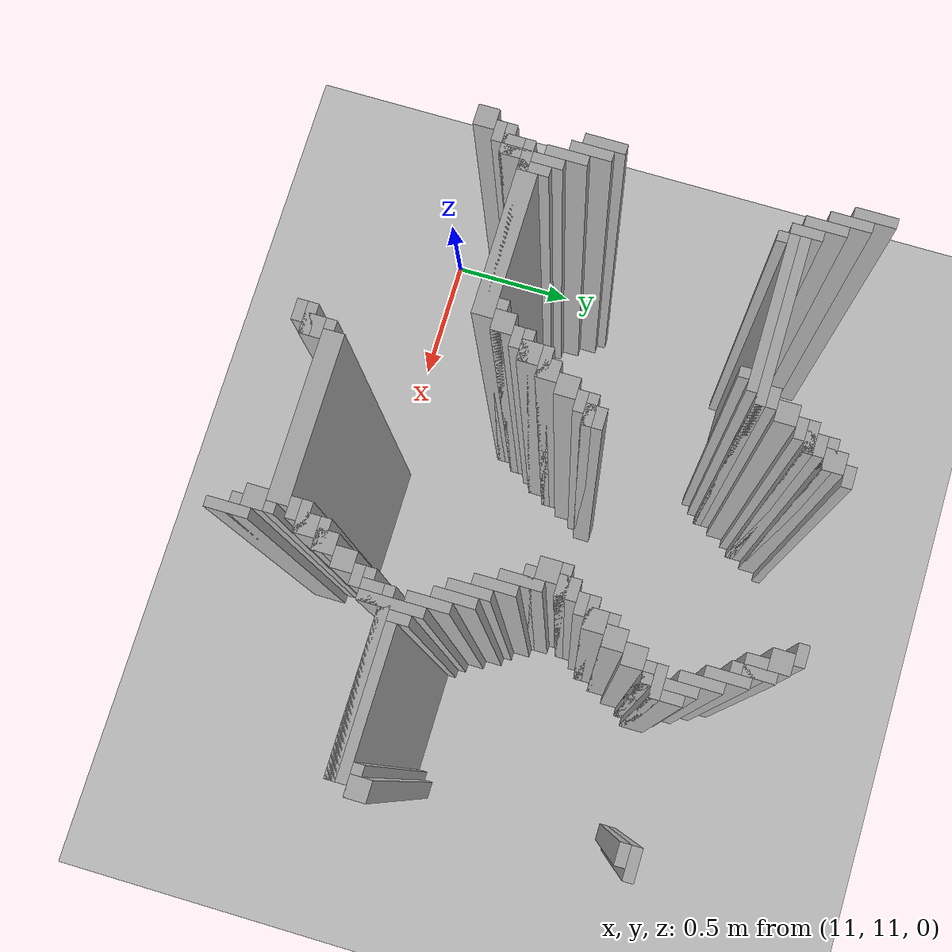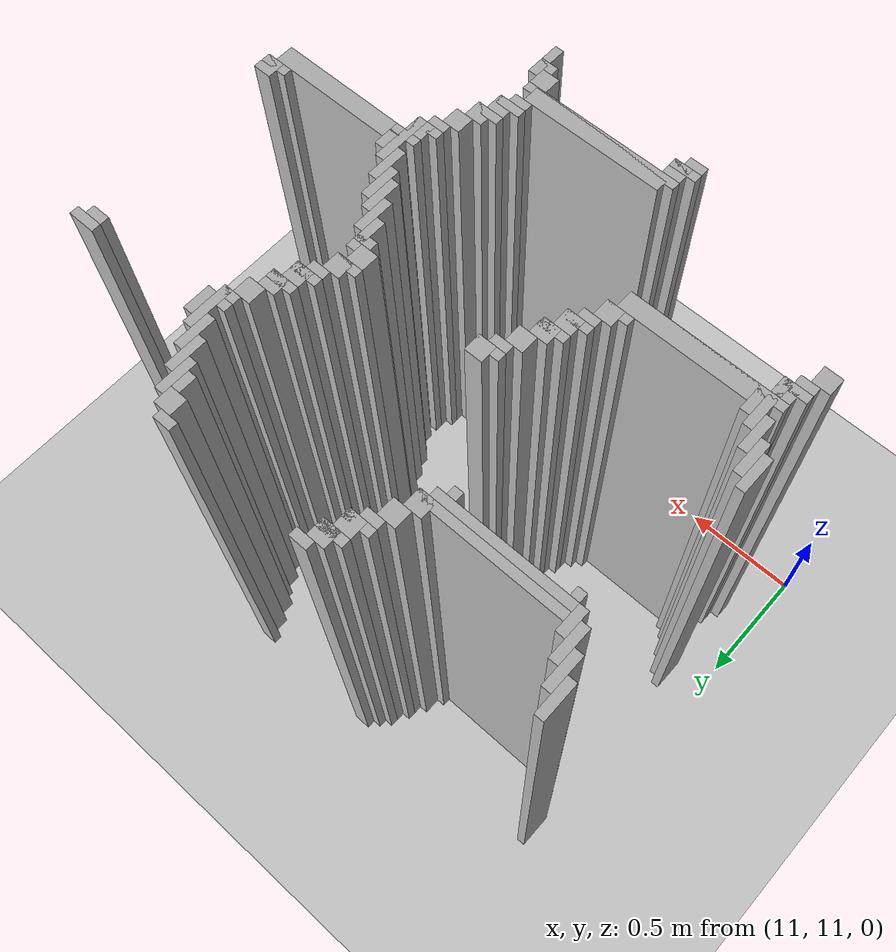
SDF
<sdf version="1.6">
 <world name="slam_world">
  <model name="ground_plane">
   <static>true</static>
   <link name="link">
    <collision name="collision">
     <geometry><plane><normal>0 0 1</normal><size>100 100</size></plane></geometry>
    </collision>
    <visual name="visual">
     <geometry><plane><normal>0 0 1</normal><size>100 100</size></plane></geometry>
     <material>
      <ambient>0.8 0.8 0.8 1</ambient>
      <diffuse>0.8 0.8 0.8 1</diffuse>
      <specular>0.8 0.8 0.8 1</specular>
     </material>
    </visual>
   </link>
  </model>
  <model name="wall_1596">
   <static>true</static>
   <pose>11.97215777262181 12.650812064965196 1.0 0 0 0</pose>
   <link name="link">
    <collision name="collision">
     <geometry><box><size>0.06960556844547564 0.03480278422273782 2.0</size></box></geometry>
    </collision>
    <visual name="visual">
     <geometry><box><size>0.06960556844547564 0.03480278422273782 2.0</size></box></geometry>
     <material><ambient>0.5 0.5 0.5 1</ambient><diffuse>0.7 0.7 0.7 1</diffuse></material>
    </visual>
   </link>
  </model>
  <model name="wall_1597">
   <static>true</static>
   <pose>12.529002320185615 12.650812064965196 1.0 0 0 0</pose>
   <link name="link">
    <collision name="collision">
     <geometry><box><size>0.06960556844547564 0.03480278422273782 2.0</size></box></geometry>
    </collision>
    <visual name="visual">
     <geometry><box><size>0.06960556844547564 0.03480278422273782 2.0</size></box></geometry>
     <material><ambient>0.5 0.5 0.5 1</ambient><diffuse>0.7 0.7 0.7 1</diffuse></material>
    </visual>
   </link>
  </model>
  <model name="wall_1611">
   <static>true</static>
   <pose>11.937354988399072 12.59860788863109 1.0 0 0 0</pose>
   <link name="link">
    <collision name="collision">
     <geometry><box><size>0.06960556844547564 0.06960556844547564 2.0</size></box></geometry>
    </collision>
    <visual name="visual">
     <geometry><box><size>0.06960556844547564 0.06960556844547564 2.0</size></box></geometry>
     <material><ambient>0.5 0.5 0.5 1</ambient><diffuse>0.7 0.7 0.7 1</diffuse></material>
    </visual>
   </link>
  </model>
  <model name="wall_1612">
   <static>true</static>
   <pose>12.563805104408353 12.59860788863109 1.0 0 0 0</pose>
   <link name="link">
    <collision name="collision">
     <geometry><box><size>0.06960556844547564 0.06960556844547564 2.0</size></box></geometry>
    </collision>
    <visual name="visual">
     <geometry><box><size>0.06960556844547564 0.06960556844547564 2.0</size></box></geometry>
     <material><ambient>0.5 0.5 0.5 1</ambient><diffuse>0.7 0.7 0.7 1</diffuse></material>
    </visual>
   </link>
  </model>
  <model name="wall_1627">
   <static>true</static>
   <pose>11.154292343387471 12.529002320185615 1.0 0 0 0</pose>
   <link name="link">
    <collision name="collision">
     <geometry><box><size>0.03480278422273782 0.13921113689095127 2.0</size></box></geometry>
    </collision>
    <visual name="visual">
     <geometry><box><size>0.03480278422273782 0.13921113689095127 2.0</size></box></geometry>
     <material><ambient>0.5 0.5 0.5 1</ambient><diffuse>0.7 0.7 0.7 1</diffuse></material>
    </visual>
   </link>
  </model>
  <model name="wall_1628">
   <static>true</static>
   <pose>11.919953596287703 12.581206496519721 1.0 0 0 0</pose>
   <link name="link">
    <collision name="collision">
     <geometry><box><size>0.10440835266821345 0.03480278422273782 2.0</size></box></geometry>
    </collision>
    <visual name="visual">
     <geometry><box><size>0.10440835266821345 0.03480278422273782 2.0</size></box></geometry>
     <material><ambient>0.5 0.5 0.5 1</ambient><diffuse>0.7 0.7 0.7 1</diffuse></material>
    </visual>
   </link>
  </model>
  <model name="wall_1629">
   <static>true</static>
   <pose>12.616009280742459 12.529002320185615 1.0 0 0 0</pose>
   <link name="link">
    <collision name="collision">
     <geometry><box><size>0.03480278422273782 0.13921113689095127 2.0</size></box></geometry>
    </collision>
    <visual name="visual">
     <geometry><box><size>0.03480278422273782 0.13921113689095127 2.0</size></box></geometry>
     <material><ambient>0.5 0.5 0.5 1</ambient><diffuse>0.7 0.7 0.7 1</diffuse></material>
    </visual>
   </link>
  </model>
  <model name="wall_1640">
   <static>true</static>
   <pose>11.902552204176333 12.529002320185615 1.0 0 0 0</pose>
   <link name="link">
    <collision name="collision">
     <geometry><box><size>0.06960556844547564 0.06960556844547564 2.0</size></box></geometry>
    </collision>
    <visual name="visual">
     <geometry><box><size>0.06960556844547564 0.06960556844547564 2.0</size></box></geometry>
     <material><ambient>0.5 0.5 0.5 1</ambient><diffuse>0.7 0.7 0.7 1</diffuse></material>
    </visual>
   </link>
  </model>
  <model name="wall_1641">
   <static>true</static>
   <pose>12.59860788863109 12.529002320185615 1.0 0 0 0</pose>
   <link name="link">
    <collision name="collision">
     <geometry><box><size>0.06960556844547564 0.06960556844547564 2.0</size></box></geometry>
    </collision>
    <visual name="visual">
     <geometry><box><size>0.06960556844547564 0.06960556844547564 2.0</size></box></geometry>
     <material><ambient>0.5 0.5 0.5 1</ambient><diffuse>0.7 0.7 0.7 1</diffuse></material>
    </visual>
   </link>
  </model>
  <model name="wall_1655">
   <static>true</static>
   <pose>11.189095127610209 12.459396751740138 1.0 0 0 0</pose>
   <link name="link">
    <collision name="collision">
     <geometry><box><size>0.03480278422273782 0.13921113689095127 2.0</size></box></geometry>
    </collision>
    <visual name="visual">
     <geometry><box><size>0.03480278422273782 0.13921113689095127 2.0</size></box></geometry>
     <material><ambient>0.5 0.5 0.5 1</ambient><diffuse>0.7 0.7 0.7 1</diffuse></material>
    </visual>
   </link>
  </model>
  <model name="wall_1656">
   <static>true</static>
   <pose>11.885150812064964 12.511600928074245 1.0 0 0 0</pose>
   <link name="link">
    <collision name="collision">
     <geometry><box><size>0.10440835266821345 0.03480278422273782 2.0</size></box></geometry>
    </collision>
    <visual name="visual">
     <geometry><box><size>0.10440835266821345 0.03480278422273782 2.0</size></box></geometry>
     <material><ambient>0.5 0.5 0.5 1</ambient><diffuse>0.7 0.7 0.7 1</diffuse></material>
    </visual>
   </link>
  </model>
  <model name="wall_1657">
   <static>true</static>
   <pose>12.650812064965196 12.459396751740138 1.0 0 0 0</pose>
   <link name="link">
    <collision name="collision">
     <geometry><box><size>0.03480278422273782 0.13921113689095127 2.0</size></box></geometry>
    </collision>
    <visual name="visual">
     <geometry><box><size>0.03480278422273782 0.13921113689095127 2.0</size></box></geometry>
     <material><ambient>0.5 0.5 0.5 1</ambient><diffuse>0.7 0.7 0.7 1</diffuse></material>
    </visual>
   </link>
  </model>
  <model name="wall_1667">
   <static>true</static>
   <pose>11.867749419953595 12.476798143851507 1.0 0 0 0</pose>
   <link name="link">
    <collision name="collision">
     <geometry><box><size>0.06960556844547564 0.03480278422273782 2.0</size></box></geometry>
    </collision>
    <visual name="visual">
     <geometry><box><size>0.06960556844547564 0.03480278422273782 2.0</size></box></geometry>
     <material><ambient>0.5 0.5 0.5 1</ambient><diffuse>0.7 0.7 0.7 1</diffuse></material>
    </visual>
   </link>
  </model>
  <model name="wall_1681">
   <static>true</static>
   <pose>11.223897911832946 12.389791183294664 1.0 0 0 0</pose>
   <link name="link">
    <collision name="collision">
     <geometry><box><size>0.03480278422273782 0.13921113689095127 2.0</size></box></geometry>
    </collision>
    <visual name="visual">
     <geometry><box><size>0.03480278422273782 0.13921113689095127 2.0</size></box></geometry>
     <material><ambient>0.5 0.5 0.5 1</ambient><diffuse>0.7 0.7 0.7 1</diffuse></material>
    </visual>
   </link>
  </model>
  <model name="wall_1682">
   <static>true</static>
   <pose>11.832946635730858 12.424593967517401 1.0 0 0 0</pose>
   <link name="link">
    <collision name="collision">
     <geometry><box><size>0.06960556844547564 0.06960556844547564 2.0</size></box></geometry>
    </collision>
    <visual name="visual">
     <geometry><box><size>0.06960556844547564 0.06960556844547564 2.0</size></box></geometry>
     <material><ambient>0.5 0.5 0.5 1</ambient><diffuse>0.7 0.7 0.7 1</diffuse></material>
    </visual>
   </link>
  </model>
  <model name="wall_1683">
   <static>true</static>
   <pose>12.685614849187935 12.389791183294664 1.0 0 0 0</pose>
   <link name="link">
    <collision name="collision">
     <geometry><box><size>0.03480278422273782 0.13921113689095127 2.0</size></box></geometry>
    </collision>
    <visual name="visual">
     <geometry><box><size>0.03480278422273782 0.13921113689095127 2.0</size></box></geometry>
     <material><ambient>0.5 0.5 0.5 1</ambient><diffuse>0.7 0.7 0.7 1</diffuse></material>
    </visual>
   </link>
  </model>
  <model name="wall_1698">
   <static>true</static>
   <pose>11.258700696055683 12.337587006960556 1.0 0 0 0</pose>
   <link name="link">
    <collision name="collision">
     <geometry><box><size>0.03480278422273782 0.10440835266821345 2.0</size></box></geometry>
    </collision>
    <visual name="visual">
     <geometry><box><size>0.03480278422273782 0.10440835266821345 2.0</size></box></geometry>
     <material><ambient>0.5 0.5 0.5 1</ambient><diffuse>0.7 0.7 0.7 1</diffuse></material>
    </visual>
   </link>
  </model>
  <model name="wall_1699">
   <static>true</static>
   <pose>11.79814385150812 12.354988399071924 1.0 0 0 0</pose>
   <link name="link">
    <collision name="collision">
     <geometry><box><size>0.06960556844547564 0.06960556844547564 2.0</size></box></geometry>
    </collision>
    <visual name="visual">
     <geometry><box><size>0.06960556844547564 0.06960556844547564 2.0</size></box></geometry>
     <material><ambient>0.5 0.5 0.5 1</ambient><diffuse>0.7 0.7 0.7 1</diffuse></material>
    </visual>
   </link>
  </model>
  <model name="wall_1700">
   <static>true</static>
   <pose>12.720417633410673 12.302784222737818 1.0 0 0 0</pose>
   <link name="link">
    <collision name="collision">
     <geometry><box><size>0.03480278422273782 0.17401392111368907 2.0</size></box></geometry>
    </collision>
    <visual name="visual">
     <geometry><box><size>0.03480278422273782 0.17401392111368907 2.0</size></box></geometry>
     <material><ambient>0.5 0.5 0.5 1</ambient><diffuse>0.7 0.7 0.7 1</diffuse></material>
    </visual>
   </link>
  </model>
  <model name="wall_1714">
   <static>true</static>
   <pose>11.554524361948955 12.337587006960556 1.0 0 0 0</pose>
   <link name="link">
    <collision name="collision">
     <geometry><box><size>0.5568445475638051 0.03480278422273782 2.0</size></box></geometry>
    </collision>
    <visual name="visual">
     <geometry><box><size>0.5568445475638051 0.03480278422273782 2.0</size></box></geometry>
     <material><ambient>0.5 0.5 0.5 1</ambient><diffuse>0.7 0.7 0.7 1</diffuse></material>
    </visual>
   </link>
  </model>
  <model name="wall_1715">
   <static>true</static>
   <pose>12.75522041763341 12.302784222737818 1.0 0 0 0</pose>
   <link name="link">
    <collision name="collision">
     <geometry><box><size>0.03480278422273782 0.10440835266821345 2.0</size></box></geometry>
    </collision>
    <visual name="visual">
     <geometry><box><size>0.03480278422273782 0.10440835266821345 2.0</size></box></geometry>
     <material><ambient>0.5 0.5 0.5 1</ambient><diffuse>0.7 0.7 0.7 1</diffuse></material>
    </visual>
   </link>
  </model>
  <model name="wall_1716">
   <static>true</static>
   <pose>13.24245939675174 12.337587006960556 1.0 0 0 0</pose>
   <link name="link">
    <collision name="collision">
     <geometry><box><size>0.10440835266821345 0.03480278422273782 2.0</size></box></geometry>
    </collision>
    <visual name="visual">
     <geometry><box><size>0.10440835266821345 0.03480278422273782 2.0</size></box></geometry>
     <material><ambient>0.5 0.5 0.5 1</ambient><diffuse>0.7 0.7 0.7 1</diffuse></material>
    </visual>
   </link>
  </model>
  <model name="wall_1728">
   <static>true</static>
   <pose>11.537122969837586 12.302784222737818 1.0 0 0 0</pose>
   <link name="link">
    <collision name="collision">
     <geometry><box><size>0.5220417633410672 0.03480278422273782 2.0</size></box></geometry>
    </collision>
    <visual name="visual">
     <geometry><box><size>0.5220417633410672 0.03480278422273782 2.0</size></box></geometry>
     <material><ambient>0.5 0.5 0.5 1</ambient><diffuse>0.7 0.7 0.7 1</diffuse></material>
    </visual>
   </link>
  </model>
  <model name="wall_1729">
   <static>true</static>
   <pose>13.22505800464037 12.302784222737818 1.0 0 0 0</pose>
   <link name="link">
    <collision name="collision">
     <geometry><box><size>0.06960556844547564 0.03480278422273782 2.0</size></box></geometry>
    </collision>
    <visual name="visual">
     <geometry><box><size>0.06960556844547564 0.03480278422273782 2.0</size></box></geometry>
     <material><ambient>0.5 0.5 0.5 1</ambient><diffuse>0.7 0.7 0.7 1</diffuse></material>
    </visual>
   </link>
  </model>
  <model name="wall_1744">
   <static>true</static>
   <pose>11.293503480278423 12.267981438515081 1.0 0 0 0</pose>
   <link name="link">
    <collision name="collision">
     <geometry><box><size>0.03480278422273782 0.03480278422273782 2.0</size></box></geometry>
    </collision>
    <visual name="visual">
     <geometry><box><size>0.03480278422273782 0.03480278422273782 2.0</size></box></geometry>
     <material><ambient>0.5 0.5 0.5 1</ambient><diffuse>0.7 0.7 0.7 1</diffuse></material>
    </visual>
   </link>
  </model>
  <model name="wall_1745">
   <static>true</static>
   <pose>11.745939675174013 12.267981438515081 1.0 0 0 0</pose>
   <link name="link">
    <collision name="collision">
     <geometry><box><size>0.03480278422273782 0.03480278422273782 2.0</size></box></geometry>
    </collision>
    <visual name="visual">
     <geometry><box><size>0.03480278422273782 0.03480278422273782 2.0</size></box></geometry>
     <material><ambient>0.5 0.5 0.5 1</ambient><diffuse>0.7 0.7 0.7 1</diffuse></material>
    </visual>
   </link>
  </model>
  <model name="wall_1746">
   <static>true</static>
   <pose>12.720417633410673 12.267981438515081 1.0 0 0 0</pose>
   <link name="link">
    <collision name="collision">
     <geometry><box><size>0.10440835266821345 0.03480278422273782 2.0</size></box></geometry>
    </collision>
    <visual name="visual">
     <geometry><box><size>0.10440835266821345 0.03480278422273782 2.0</size></box></geometry>
     <material><ambient>0.5 0.5 0.5 1</ambient><diffuse>0.7 0.7 0.7 1</diffuse></material>
    </visual>
   </link>
  </model>
  <model name="wall_1762">
   <static>true</static>
   <pose>12.703016241299304 12.233178654292344 1.0 0 0 0</pose>
   <link name="link">
    <collision name="collision">
     <geometry><box><size>0.06960556844547564 0.03480278422273782 2.0</size></box></geometry>
    </collision>
    <visual name="visual">
     <geometry><box><size>0.06960556844547564 0.03480278422273782 2.0</size></box></geometry>
     <material><ambient>0.5 0.5 0.5 1</ambient><diffuse>0.7 0.7 0.7 1</diffuse></material>
    </visual>
   </link>
  </model>
  <model name="wall_1778">
   <static>true</static>
   <pose>12.668213457076565 12.180974477958236 1.0 0 0 0</pose>
   <link name="link">
    <collision name="collision">
     <geometry><box><size>0.06960556844547564 0.06960556844547564 2.0</size></box></geometry>
    </collision>
    <visual name="visual">
     <geometry><box><size>0.06960556844547564 0.06960556844547564 2.0</size></box></geometry>
     <material><ambient>0.5 0.5 0.5 1</ambient><diffuse>0.7 0.7 0.7 1</diffuse></material>
    </visual>
   </link>
  </model>
  <model name="wall_1794">
   <static>true</static>
   <pose>12.633410672853827 12.11136890951276 1.0 0 0 0</pose>
   <link name="link">
    <collision name="collision">
     <geometry><box><size>0.06960556844547564 0.06960556844547564 2.0</size></box></geometry>
    </collision>
    <visual name="visual">
     <geometry><box><size>0.06960556844547564 0.06960556844547564 2.0</size></box></geometry>
     <material><ambient>0.5 0.5 0.5 1</ambient><diffuse>0.7 0.7 0.7 1</diffuse></material>
    </visual>
   </link>
  </model>
  <model name="wall_1810">
   <static>true</static>
   <pose>12.616009280742459 12.093967517401392 1.0 0 0 0</pose>
   <link name="link">
    <collision name="collision">
     <geometry><box><size>0.10440835266821345 0.03480278422273782 2.0</size></box></geometry>
    </collision>
    <visual name="visual">
     <geometry><box><size>0.10440835266821345 0.03480278422273782 2.0</size></box></geometry>
     <material><ambient>0.5 0.5 0.5 1</ambient><diffuse>0.7 0.7 0.7 1</diffuse></material>
    </visual>
   </link>
  </model>
  <model name="wall_1821">
   <static>true</static>
   <pose>12.59860788863109 12.041763341067284 1.0 0 0 0</pose>
   <link name="link">
    <collision name="collision">
     <geometry><box><size>0.06960556844547564 0.06960556844547564 2.0</size></box></geometry>
    </collision>
    <visual name="visual">
     <geometry><box><size>0.06960556844547564 0.06960556844547564 2.0</size></box></geometry>
     <material><ambient>0.5 0.5 0.5 1</ambient><diffuse>0.7 0.7 0.7 1</diffuse></material>
    </visual>
   </link>
  </model>
  <model name="wall_1836">
   <static>true</static>
   <pose>12.581206496519721 12.024361948955915 1.0 0 0 0</pose>
   <link name="link">
    <collision name="collision">
     <geometry><box><size>0.10440835266821345 0.03480278422273782 2.0</size></box></geometry>
    </collision>
    <visual name="visual">
     <geometry><box><size>0.10440835266821345 0.03480278422273782 2.0</size></box></geometry>
     <material><ambient>0.5 0.5 0.5 1</ambient><diffuse>0.7 0.7 0.7 1</diffuse></material>
    </visual>
   </link>
  </model>
  <model name="wall_1845">
   <static>true</static>
   <pose>12.563805104408353 11.989559164733178 1.0 0 0 0</pose>
   <link name="link">
    <collision name="collision">
     <geometry><box><size>0.06960556844547564 0.03480278422273782 2.0</size></box></geometry>
    </collision>
    <visual name="visual">
     <geometry><box><size>0.06960556844547564 0.03480278422273782 2.0</size></box></geometry>
     <material><ambient>0.5 0.5 0.5 1</ambient><diffuse>0.7 0.7 0.7 1</diffuse></material>
    </visual>
   </link>
  </model>
  <model name="wall_1860">
   <static>true</static>
   <pose>12.529002320185615 11.937354988399072 1.0 0 0 0</pose>
   <link name="link">
    <collision name="collision">
     <geometry><box><size>0.06960556844547564 0.06960556844547564 2.0</size></box></geometry>
    </collision>
    <visual name="visual">
     <geometry><box><size>0.06960556844547564 0.06960556844547564 2.0</size></box></geometry>
     <material><ambient>0.5 0.5 0.5 1</ambient><diffuse>0.7 0.7 0.7 1</diffuse></material>
    </visual>
   </link>
  </model>
  <model name="wall_1876">
   <static>true</static>
   <pose>12.511600928074245 11.919953596287703 1.0 0 0 0</pose>
   <link name="link">
    <collision name="collision">
     <geometry><box><size>0.10440835266821345 0.03480278422273782 2.0</size></box></geometry>
    </collision>
    <visual name="visual">
     <geometry><box><size>0.10440835266821345 0.03480278422273782 2.0</size></box></geometry>
     <material><ambient>0.5 0.5 0.5 1</ambient><diffuse>0.7 0.7 0.7 1</diffuse></material>
    </visual>
   </link>
  </model>
  <model name="wall_1887">
   <static>true</static>
   <pose>12.006960556844547 11.867749419953595 1.0 0 0 0</pose>
   <link name="link">
    <collision name="collision">
     <geometry><box><size>0.06960556844547564 0.06960556844547564 2.0</size></box></geometry>
    </collision>
    <visual name="visual">
     <geometry><box><size>0.06960556844547564 0.06960556844547564 2.0</size></box></geometry>
     <material><ambient>0.5 0.5 0.5 1</ambient><diffuse>0.7 0.7 0.7 1</diffuse></material>
    </visual>
   </link>
  </model>
  <model name="wall_1888">
   <static>true</static>
   <pose>12.494199535962876 11.867749419953595 1.0 0 0 0</pose>
   <link name="link">
    <collision name="collision">
     <geometry><box><size>0.06960556844547564 0.06960556844547564 2.0</size></box></geometry>
    </collision>
    <visual name="visual">
     <geometry><box><size>0.06960556844547564 0.06960556844547564 2.0</size></box></geometry>
     <material><ambient>0.5 0.5 0.5 1</ambient><diffuse>0.7 0.7 0.7 1</diffuse></material>
    </visual>
   </link>
  </model>
  <model name="wall_1900">
   <static>true</static>
   <pose>11.989559164733178 11.850348027842227 1.0 0 0 0</pose>
   <link name="link">
    <collision name="collision">
     <geometry><box><size>0.10440835266821345 0.03480278422273782 2.0</size></box></geometry>
    </collision>
    <visual name="visual">
     <geometry><box><size>0.10440835266821345 0.03480278422273782 2.0</size></box></geometry>
     <material><ambient>0.5 0.5 0.5 1</ambient><diffuse>0.7 0.7 0.7 1</diffuse></material>
    </visual>
   </link>
  </model>
  <model name="wall_1901">
   <static>true</static>
   <pose>12.546403712296984 11.79814385150812 1.0 0 0 0</pose>
   <link name="link">
    <collision name="collision">
     <geometry><box><size>0.03480278422273782 0.13921113689095127 2.0</size></box></geometry>
    </collision>
    <visual name="visual">
     <geometry><box><size>0.03480278422273782 0.13921113689095127 2.0</size></box></geometry>
     <material><ambient>0.5 0.5 0.5 1</ambient><diffuse>0.7 0.7 0.7 1</diffuse></material>
    </visual>
   </link>
  </model>
  <model name="wall_1915">
   <static>true</static>
   <pose>11.97215777262181 11.81554524361949 1.0 0 0 0</pose>
   <link name="link">
    <collision name="collision">
     <geometry><box><size>0.06960556844547564 0.03480278422273782 2.0</size></box></geometry>
    </collision>
    <visual name="visual">
     <geometry><box><size>0.06960556844547564 0.03480278422273782 2.0</size></box></geometry>
     <material><ambient>0.5 0.5 0.5 1</ambient><diffuse>0.7 0.7 0.7 1</diffuse></material>
    </visual>
   </link>
  </model>
  <model name="wall_1916">
   <static>true</static>
   <pose>12.529002320185615 11.81554524361949 1.0 0 0 0</pose>
   <link name="link">
    <collision name="collision">
     <geometry><box><size>0.06960556844547564 0.03480278422273782 2.0</size></box></geometry>
    </collision>
    <visual name="visual">
     <geometry><box><size>0.06960556844547564 0.03480278422273782 2.0</size></box></geometry>
     <material><ambient>0.5 0.5 0.5 1</ambient><diffuse>0.7 0.7 0.7 1</diffuse></material>
    </visual>
   </link>
  </model>
  <model name="wall_1931">
   <static>true</static>
   <pose>11.937354988399072 11.763341067285383 1.0 0 0 0</pose>
   <link name="link">
    <collision name="collision">
     <geometry><box><size>0.06960556844547564 0.06960556844547564 2.0</size></box></geometry>
    </collision>
    <visual name="visual">
     <geometry><box><size>0.06960556844547564 0.06960556844547564 2.0</size></box></geometry>
     <material><ambient>0.5 0.5 0.5 1</ambient><diffuse>0.7 0.7 0.7 1</diffuse></material>
    </visual>
   </link>
  </model>
  <model name="wall_1932">
   <static>true</static>
   <pose>12.581206496519721 11.728538283062644 1.0 0 0 0</pose>
   <link name="link">
    <collision name="collision">
     <geometry><box><size>0.03480278422273782 0.13921113689095127 2.0</size></box></geometry>
    </collision>
    <visual name="visual">
     <geometry><box><size>0.03480278422273782 0.13921113689095127 2.0</size></box></geometry>
     <material><ambient>0.5 0.5 0.5 1</ambient><diffuse>0.7 0.7 0.7 1</diffuse></material>
    </visual>
   </link>
  </model>
  <model name="wall_1946">
   <static>true</static>
   <pose>11.154292343387471 11.658932714617169 1.0 0 0 0</pose>
   <link name="link">
    <collision name="collision">
     <geometry><box><size>0.03480278422273782 0.13921113689095127 2.0</size></box></geometry>
    </collision>
    <visual name="visual">
     <geometry><box><size>0.03480278422273782 0.13921113689095127 2.0</size></box></geometry>
     <material><ambient>0.5 0.5 0.5 1</ambient><diffuse>0.7 0.7 0.7 1</diffuse></material>
    </visual>
   </link>
  </model>
  <model name="wall_1947">
   <static>true</static>
   <pose>11.902552204176333 11.693735498839906 1.0 0 0 0</pose>
   <link name="link">
    <collision name="collision">
     <geometry><box><size>0.06960556844547564 0.06960556844547564 2.0</size></box></geometry>
    </collision>
    <visual name="visual">
     <geometry><box><size>0.06960556844547564 0.06960556844547564 2.0</size></box></geometry>
     <material><ambient>0.5 0.5 0.5 1</ambient><diffuse>0.7 0.7 0.7 1</diffuse></material>
    </visual>
   </link>
  </model>
  <model name="wall_1948">
   <static>true</static>
   <pose>12.616009280742459 11.658932714617169 1.0 0 0 0</pose>
   <link name="link">
    <collision name="collision">
     <geometry><box><size>0.03480278422273782 0.13921113689095127 2.0</size></box></geometry>
    </collision>
    <visual name="visual">
     <geometry><box><size>0.03480278422273782 0.13921113689095127 2.0</size></box></geometry>
     <material><ambient>0.5 0.5 0.5 1</ambient><diffuse>0.7 0.7 0.7 1</diffuse></material>
    </visual>
   </link>
  </model>
  <model name="wall_1962">
   <static>true</static>
   <pose>11.189095127610209 11.624129930394432 1.0 0 0 0</pose>
   <link name="link">
    <collision name="collision">
     <geometry><box><size>0.03480278422273782 0.13921113689095127 2.0</size></box></geometry>
    </collision>
    <visual name="visual">
     <geometry><box><size>0.03480278422273782 0.13921113689095127 2.0</size></box></geometry>
     <material><ambient>0.5 0.5 0.5 1</ambient><diffuse>0.7 0.7 0.7 1</diffuse></material>
    </visual>
   </link>
  </model>
  <model name="wall_1963">
   <static>true</static>
   <pose>11.885150812064964 11.676334106728538 1.0 0 0 0</pose>
   <link name="link">
    <collision name="collision">
     <geometry><box><size>0.10440835266821345 0.03480278422273782 2.0</size></box></geometry>
    </collision>
    <visual name="visual">
     <geometry><box><size>0.10440835266821345 0.03480278422273782 2.0</size></box></geometry>
     <material><ambient>0.5 0.5 0.5 1</ambient><diffuse>0.7 0.7 0.7 1</diffuse></material>
    </visual>
   </link>
  </model>
  <model name="wall_1964">
   <static>true</static>
   <pose>12.650812064965196 11.624129930394432 1.0 0 0 0</pose>
   <link name="link">
    <collision name="collision">
     <geometry><box><size>0.03480278422273782 0.13921113689095127 2.0</size></box></geometry>
    </collision>
    <visual name="visual">
     <geometry><box><size>0.03480278422273782 0.13921113689095127 2.0</size></box></geometry>
     <material><ambient>0.5 0.5 0.5 1</ambient><diffuse>0.7 0.7 0.7 1</diffuse></material>
    </visual>
   </link>
  </model>
  <model name="wall_1974">
   <static>true</static>
   <pose>11.867749419953595 11.624129930394432 1.0 0 0 0</pose>
   <link name="link">
    <collision name="collision">
     <geometry><box><size>0.06960556844547564 0.06960556844547564 2.0</size></box></geometry>
    </collision>
    <visual name="visual">
     <geometry><box><size>0.06960556844547564 0.06960556844547564 2.0</size></box></geometry>
     <material><ambient>0.5 0.5 0.5 1</ambient><diffuse>0.7 0.7 0.7 1</diffuse></material>
    </visual>
   </link>
  </model>
  <model name="wall_1988">
   <static>true</static>
   <pose>11.223897911832946 11.554524361948955 1.0 0 0 0</pose>
   <link name="link">
    <collision name="collision">
     <geometry><box><size>0.03480278422273782 0.13921113689095127 2.0</size></box></geometry>
    </collision>
    <visual name="visual">
     <geometry><box><size>0.03480278422273782 0.13921113689095127 2.0</size></box></geometry>
     <material><ambient>0.5 0.5 0.5 1</ambient><diffuse>0.7 0.7 0.7 1</diffuse></material>
    </visual>
   </link>
  </model>
  <model name="wall_1989">
   <static>true</static>
   <pose>11.850348027842227 11.606728538283063 1.0 0 0 0</pose>
   <link name="link">
    <collision name="collision">
     <geometry><box><size>0.10440835266821345 0.03480278422273782 2.0</size></box></geometry>
    </collision>
    <visual name="visual">
     <geometry><box><size>0.10440835266821345 0.03480278422273782 2.0</size></box></geometry>
     <material><ambient>0.5 0.5 0.5 1</ambient><diffuse>0.7 0.7 0.7 1</diffuse></material>
    </visual>
   </link>
  </model>
  <model name="wall_1990">
   <static>true</static>
   <pose>12.685614849187935 11.554524361948955 1.0 0 0 0</pose>
   <link name="link">
    <collision name="collision">
     <geometry><box><size>0.03480278422273782 0.13921113689095127 2.0</size></box></geometry>
    </collision>
    <visual name="visual">
     <geometry><box><size>0.03480278422273782 0.13921113689095127 2.0</size></box></geometry>
     <material><ambient>0.5 0.5 0.5 1</ambient><diffuse>0.7 0.7 0.7 1</diffuse></material>
    </visual>
   </link>
  </model>
  <model name="wall_1998">
   <static>true</static>
   <pose>11.832946635730858 11.571925754060324 1.0 0 0 0</pose>
   <link name="link">
    <collision name="collision">
     <geometry><box><size>0.06960556844547564 0.03480278422273782 2.0</size></box></geometry>
    </collision>
    <visual name="visual">
     <geometry><box><size>0.06960556844547564 0.03480278422273782 2.0</size></box></geometry>
     <material><ambient>0.5 0.5 0.5 1</ambient><diffuse>0.7 0.7 0.7 1</diffuse></material>
    </visual>
   </link>
  </model>
  <model name="wall_2011">
   <static>true</static>
   <pose>11.258700696055683 11.450116009280743 1.0 0 0 0</pose>
   <link name="link">
    <collision name="collision">
     <geometry><box><size>0.03480278422273782 0.2088167053364269 2.0</size></box></geometry>
    </collision>
    <visual name="visual">
     <geometry><box><size>0.03480278422273782 0.2088167053364269 2.0</size></box></geometry>
     <material><ambient>0.5 0.5 0.5 1</ambient><diffuse>0.7 0.7 0.7 1</diffuse></material>
    </visual>
   </link>
  </model>
  <model name="wall_2012">
   <static>true</static>
   <pose>11.79814385150812 11.519721577726218 1.0 0 0 0</pose>
   <link name="link">
    <collision name="collision">
     <geometry><box><size>0.06960556844547564 0.06960556844547564 2.0</size></box></geometry>
    </collision>
    <visual name="visual">
     <geometry><box><size>0.06960556844547564 0.06960556844547564 2.0</size></box></geometry>
     <material><ambient>0.5 0.5 0.5 1</ambient><diffuse>0.7 0.7 0.7 1</diffuse></material>
    </visual>
   </link>
  </model>
  <model name="wall_2013">
   <static>true</static>
   <pose>12.720417633410673 11.450116009280743 1.0 0 0 0</pose>
   <link name="link">
    <collision name="collision">
     <geometry><box><size>0.03480278422273782 0.2088167053364269 2.0</size></box></geometry>
    </collision>
    <visual name="visual">
     <geometry><box><size>0.03480278422273782 0.2088167053364269 2.0</size></box></geometry>
     <material><ambient>0.5 0.5 0.5 1</ambient><diffuse>0.7 0.7 0.7 1</diffuse></material>
    </visual>
   </link>
  </model>
  <model name="wall_2014">
   <static>true</static>
   <pose>13.259860788863108 11.519721577726218 1.0 0 0 0</pose>
   <link name="link">
    <collision name="collision">
     <geometry><box><size>0.06960556844547564 0.06960556844547564 2.0</size></box></geometry>
    </collision>
    <visual name="visual">
     <geometry><box><size>0.06960556844547564 0.06960556844547564 2.0</size></box></geometry>
     <material><ambient>0.5 0.5 0.5 1</ambient><diffuse>0.7 0.7 0.7 1</diffuse></material>
    </visual>
   </link>
  </model>
  <model name="wall_2026">
   <static>true</static>
   <pose>11.293503480278423 11.467517401392112 1.0 0 0 0</pose>
   <link name="link">
    <collision name="collision">
     <geometry><box><size>0.03480278422273782 0.10440835266821345 2.0</size></box></geometry>
    </collision>
    <visual name="visual">
     <geometry><box><size>0.03480278422273782 0.10440835266821345 2.0</size></box></geometry>
     <material><ambient>0.5 0.5 0.5 1</ambient><diffuse>0.7 0.7 0.7 1</diffuse></material>
    </visual>
   </link>
  </model>
  <model name="wall_2027">
   <static>true</static>
   <pose>11.780742459396752 11.502320185614849 1.0 0 0 0</pose>
   <link name="link">
    <collision name="collision">
     <geometry><box><size>0.10440835266821345 0.03480278422273782 2.0</size></box></geometry>
    </collision>
    <visual name="visual">
     <geometry><box><size>0.10440835266821345 0.03480278422273782 2.0</size></box></geometry>
     <material><ambient>0.5 0.5 0.5 1</ambient><diffuse>0.7 0.7 0.7 1</diffuse></material>
    </visual>
   </link>
  </model>
  <model name="wall_2028">
   <static>true</static>
   <pose>12.75522041763341 11.467517401392112 1.0 0 0 0</pose>
   <link name="link">
    <collision name="collision">
     <geometry><box><size>0.03480278422273782 0.10440835266821345 2.0</size></box></geometry>
    </collision>
    <visual name="visual">
     <geometry><box><size>0.03480278422273782 0.10440835266821345 2.0</size></box></geometry>
     <material><ambient>0.5 0.5 0.5 1</ambient><diffuse>0.7 0.7 0.7 1</diffuse></material>
    </visual>
   </link>
  </model>
  <model name="wall_2029">
   <static>true</static>
   <pose>13.24245939675174 11.502320185614849 1.0 0 0 0</pose>
   <link name="link">
    <collision name="collision">
     <geometry><box><size>0.10440835266821345 0.03480278422273782 2.0</size></box></geometry>
    </collision>
    <visual name="visual">
     <geometry><box><size>0.10440835266821345 0.03480278422273782 2.0</size></box></geometry>
     <material><ambient>0.5 0.5 0.5 1</ambient><diffuse>0.7 0.7 0.7 1</diffuse></material>
    </visual>
   </link>
  </model>
  <model name="wall_2040">
   <static>true</static>
   <pose>11.554524361948955 11.450116009280743 1.0 0 0 0</pose>
   <link name="link">
    <collision name="collision">
     <geometry><box><size>0.4872389791183295 0.06960556844547564 2.0</size></box></geometry>
    </collision>
    <visual name="visual">
     <geometry><box><size>0.4872389791183295 0.06960556844547564 2.0</size></box></geometry>
     <material><ambient>0.5 0.5 0.5 1</ambient><diffuse>0.7 0.7 0.7 1</diffuse></material>
    </visual>
   </link>
  </model>
  <model name="wall_2041">
   <static>true</static>
   <pose>13.016241299303944 11.450116009280743 1.0 0 0 0</pose>
   <link name="link">
    <collision name="collision">
     <geometry><box><size>0.4872389791183295 0.06960556844547564 2.0</size></box></geometry>
    </collision>
    <visual name="visual">
     <geometry><box><size>0.4872389791183295 0.06960556844547564 2.0</size></box></geometry>
     <material><ambient>0.5 0.5 0.5 1</ambient><diffuse>0.7 0.7 0.7 1</diffuse></material>
    </visual>
   </link>
  </model>
  <model name="wall_2051">
   <static>true</static>
   <pose>11.502320185614849 11.432714617169372 1.0 0 0 0</pose>
   <link name="link">
    <collision name="collision">
     <geometry><box><size>0.5916473317865429 0.03480278422273782 2.0</size></box></geometry>
    </collision>
    <visual name="visual">
     <geometry><box><size>0.5916473317865429 0.03480278422273782 2.0</size></box></geometry>
     <material><ambient>0.5 0.5 0.5 1</ambient><diffuse>0.7 0.7 0.7 1</diffuse></material>
    </visual>
   </link>
  </model>
  <model name="wall_2052">
   <static>true</static>
   <pose>12.964037122969836 11.432714617169372 1.0 0 0 0</pose>
   <link name="link">
    <collision name="collision">
     <geometry><box><size>0.5916473317865429 0.03480278422273782 2.0</size></box></geometry>
    </collision>
    <visual name="visual">
     <geometry><box><size>0.5916473317865429 0.03480278422273782 2.0</size></box></geometry>
     <material><ambient>0.5 0.5 0.5 1</ambient><diffuse>0.7 0.7 0.7 1</diffuse></material>
    </visual>
   </link>
  </model>
  <model name="wall_2063">
   <static>true</static>
   <pose>11.241299303944315 11.380510440835266 1.0 0 0 0</pose>
   <link name="link">
    <collision name="collision">
     <geometry><box><size>0.06960556844547564 0.06960556844547564 2.0</size></box></geometry>
    </collision>
    <visual name="visual">
     <geometry><box><size>0.06960556844547564 0.06960556844547564 2.0</size></box></geometry>
     <material><ambient>0.5 0.5 0.5 1</ambient><diffuse>0.7 0.7 0.7 1</diffuse></material>
    </visual>
   </link>
  </model>
  <model name="wall_2064">
   <static>true</static>
   <pose>12.703016241299304 11.380510440835266 1.0 0 0 0</pose>
   <link name="link">
    <collision name="collision">
     <geometry><box><size>0.06960556844547564 0.06960556844547564 2.0</size></box></geometry>
    </collision>
    <visual name="visual">
     <geometry><box><size>0.06960556844547564 0.06960556844547564 2.0</size></box></geometry>
     <material><ambient>0.5 0.5 0.5 1</ambient><diffuse>0.7 0.7 0.7 1</diffuse></material>
    </visual>
   </link>
  </model>
  <model name="wall_2075">
   <static>true</static>
   <pose>11.223897911832946 11.363109048723897 1.0 0 0 0</pose>
   <link name="link">
    <collision name="collision">
     <geometry><box><size>0.10440835266821345 0.03480278422273782 2.0</size></box></geometry>
    </collision>
    <visual name="visual">
     <geometry><box><size>0.10440835266821345 0.03480278422273782 2.0</size></box></geometry>
     <material><ambient>0.5 0.5 0.5 1</ambient><diffuse>0.7 0.7 0.7 1</diffuse></material>
    </visual>
   </link>
  </model>
  <model name="wall_2076">
   <static>true</static>
   <pose>12.685614849187935 11.363109048723897 1.0 0 0 0</pose>
   <link name="link">
    <collision name="collision">
     <geometry><box><size>0.10440835266821345 0.03480278422273782 2.0</size></box></geometry>
    </collision>
    <visual name="visual">
     <geometry><box><size>0.10440835266821345 0.03480278422273782 2.0</size></box></geometry>
     <material><ambient>0.5 0.5 0.5 1</ambient><diffuse>0.7 0.7 0.7 1</diffuse></material>
    </visual>
   </link>
  </model>
  <model name="wall_2084">
   <static>true</static>
   <pose>11.206496519721577 11.32830626450116 1.0 0 0 0</pose>
   <link name="link">
    <collision name="collision">
     <geometry><box><size>0.06960556844547564 0.03480278422273782 2.0</size></box></geometry>
    </collision>
    <visual name="visual">
     <geometry><box><size>0.06960556844547564 0.03480278422273782 2.0</size></box></geometry>
     <material><ambient>0.5 0.5 0.5 1</ambient><diffuse>0.7 0.7 0.7 1</diffuse></material>
    </visual>
   </link>
  </model>
  <model name="wall_2085">
   <static>true</static>
   <pose>12.668213457076565 11.32830626450116 1.0 0 0 0</pose>
   <link name="link">
    <collision name="collision">
     <geometry><box><size>0.06960556844547564 0.03480278422273782 2.0</size></box></geometry>
    </collision>
    <visual name="visual">
     <geometry><box><size>0.06960556844547564 0.03480278422273782 2.0</size></box></geometry>
     <material><ambient>0.5 0.5 0.5 1</ambient><diffuse>0.7 0.7 0.7 1</diffuse></material>
    </visual>
   </link>
  </model>
  <model name="wall_2095">
   <static>true</static>
   <pose>11.17169373549884 11.276102088167052 1.0 0 0 0</pose>
   <link name="link">
    <collision name="collision">
     <geometry><box><size>0.06960556844547564 0.06960556844547564 2.0</size></box></geometry>
    </collision>
    <visual name="visual">
     <geometry><box><size>0.06960556844547564 0.06960556844547564 2.0</size></box></geometry>
     <material><ambient>0.5 0.5 0.5 1</ambient><diffuse>0.7 0.7 0.7 1</diffuse></material>
    </visual>
   </link>
  </model>
  <model name="wall_2096">
   <static>true</static>
   <pose>12.633410672853827 11.276102088167052 1.0 0 0 0</pose>
   <link name="link">
    <collision name="collision">
     <geometry><box><size>0.06960556844547564 0.06960556844547564 2.0</size></box></geometry>
    </collision>
    <visual name="visual">
     <geometry><box><size>0.06960556844547564 0.06960556844547564 2.0</size></box></geometry>
     <material><ambient>0.5 0.5 0.5 1</ambient><diffuse>0.7 0.7 0.7 1</diffuse></material>
    </visual>
   </link>
  </model>
  <model name="wall_2108">
   <static>true</static>
   <pose>12.59860788863109 11.206496519721577 1.0 0 0 0</pose>
   <link name="link">
    <collision name="collision">
     <geometry><box><size>0.06960556844547564 0.06960556844547564 2.0</size></box></geometry>
    </collision>
    <visual name="visual">
     <geometry><box><size>0.06960556844547564 0.06960556844547564 2.0</size></box></geometry>
     <material><ambient>0.5 0.5 0.5 1</ambient><diffuse>0.7 0.7 0.7 1</diffuse></material>
    </visual>
   </link>
  </model>
  <model name="wall_2120">
   <static>true</static>
   <pose>12.581206496519721 11.189095127610209 1.0 0 0 0</pose>
   <link name="link">
    <collision name="collision">
     <geometry><box><size>0.10440835266821345 0.03480278422273782 2.0</size></box></geometry>
    </collision>
    <visual name="visual">
     <geometry><box><size>0.10440835266821345 0.03480278422273782 2.0</size></box></geometry>
     <material><ambient>0.5 0.5 0.5 1</ambient><diffuse>0.7 0.7 0.7 1</diffuse></material>
    </visual>
   </link>
  </model>
  <model name="wall_2128">
   <static>true</static>
   <pose>12.563805104408353 11.1368909512761 1.0 0 0 0</pose>
   <link name="link">
    <collision name="collision">
     <geometry><box><size>0.06960556844547564 0.06960556844547564 2.0</size></box></geometry>
    </collision>
    <visual name="visual">
     <geometry><box><size>0.06960556844547564 0.06960556844547564 2.0</size></box></geometry>
     <material><ambient>0.5 0.5 0.5 1</ambient><diffuse>0.7 0.7 0.7 1</diffuse></material>
    </visual>
   </link>
  </model>
  <model name="wall_2139">
   <static>true</static>
   <pose>12.546403712296984 11.119489559164732 1.0 0 0 0</pose>
   <link name="link">
    <collision name="collision">
     <geometry><box><size>0.10440835266821345 0.03480278422273782 2.0</size></box></geometry>
    </collision>
    <visual name="visual">
     <geometry><box><size>0.10440835266821345 0.03480278422273782 2.0</size></box></geometry>
     <material><ambient>0.5 0.5 0.5 1</ambient><diffuse>0.7 0.7 0.7 1</diffuse></material>
    </visual>
   </link>
  </model>
  <model name="wall_2147">
   <static>true</static>
   <pose>12.529002320185615 11.084686774941995 1.0 0 0 0</pose>
   <link name="link">
    <collision name="collision">
     <geometry><box><size>0.06960556844547564 0.03480278422273782 2.0</size></box></geometry>
    </collision>
    <visual name="visual">
     <geometry><box><size>0.06960556844547564 0.03480278422273782 2.0</size></box></geometry>
     <material><ambient>0.5 0.5 0.5 1</ambient><diffuse>0.7 0.7 0.7 1</diffuse></material>
    </visual>
   </link>
  </model>
  <model name="wall_2158">
   <static>true</static>
   <pose>12.250580046403712 11.032482598607888 1.0 0 0 0</pose>
   <link name="link">
    <collision name="collision">
     <geometry><box><size>0.5568445475638051 0.06960556844547564 2.0</size></box></geometry>
    </collision>
    <visual name="visual">
     <geometry><box><size>0.5568445475638051 0.06960556844547564 2.0</size></box></geometry>
     <material><ambient>0.5 0.5 0.5 1</ambient><diffuse>0.7 0.7 0.7 1</diffuse></material>
    </visual>
   </link>
  </model>
  <model name="wall_2170">
   <static>true</static>
   <pose>12.250580046403712 11.01508120649652 1.0 0 0 0</pose>
   <link name="link">
    <collision name="collision">
     <geometry><box><size>0.6264501160092807 0.03480278422273782 2.0</size></box></geometry>
    </collision>
    <visual name="visual">
     <geometry><box><size>0.6264501160092807 0.03480278422273782 2.0</size></box></geometry>
     <material><ambient>0.5 0.5 0.5 1</ambient><diffuse>0.7 0.7 0.7 1</diffuse></material>
    </visual>
   </link>
  </model>
  <model name="wall_2184">
   <static>true</static>
   <pose>11.97215777262181 10.962877030162412 1.0 0 0 0</pose>
   <link name="link">
    <collision name="collision">
     <geometry><box><size>0.06960556844547564 0.06960556844547564 2.0</size></box></geometry>
    </collision>
    <visual name="visual">
     <geometry><box><size>0.06960556844547564 0.06960556844547564 2.0</size></box></geometry>
     <material><ambient>0.5 0.5 0.5 1</ambient><diffuse>0.7 0.7 0.7 1</diffuse></material>
    </visual>
   </link>
  </model>
  <model name="wall_2185">
   <static>true</static>
   <pose>12.529002320185615 10.962877030162412 1.0 0 0 0</pose>
   <link name="link">
    <collision name="collision">
     <geometry><box><size>0.06960556844547564 0.06960556844547564 2.0</size></box></geometry>
    </collision>
    <visual name="visual">
     <geometry><box><size>0.06960556844547564 0.06960556844547564 2.0</size></box></geometry>
     <material><ambient>0.5 0.5 0.5 1</ambient><diffuse>0.7 0.7 0.7 1</diffuse></material>
    </visual>
   </link>
  </model>
  <model name="wall_2199">
   <static>true</static>
   <pose>11.95475638051044 10.945475638051043 1.0 0 0 0</pose>
   <link name="link">
    <collision name="collision">
     <geometry><box><size>0.10440835266821345 0.03480278422273782 2.0</size></box></geometry>
    </collision>
    <visual name="visual">
     <geometry><box><size>0.10440835266821345 0.03480278422273782 2.0</size></box></geometry>
     <material><ambient>0.5 0.5 0.5 1</ambient><diffuse>0.7 0.7 0.7 1</diffuse></material>
    </visual>
   </link>
  </model>
  <model name="wall_2200">
   <static>true</static>
   <pose>12.581206496519721 10.893271461716937 1.0 0 0 0</pose>
   <link name="link">
    <collision name="collision">
     <geometry><box><size>0.03480278422273782 0.13921113689095127 2.0</size></box></geometry>
    </collision>
    <visual name="visual">
     <geometry><box><size>0.03480278422273782 0.13921113689095127 2.0</size></box></geometry>
     <material><ambient>0.5 0.5 0.5 1</ambient><diffuse>0.7 0.7 0.7 1</diffuse></material>
    </visual>
   </link>
  </model>
  <model name="wall_2210">
   <static>true</static>
   <pose>11.937354988399072 10.910672853828306 1.0 0 0 0</pose>
   <link name="link">
    <collision name="collision">
     <geometry><box><size>0.06960556844547564 0.03480278422273782 2.0</size></box></geometry>
    </collision>
    <visual name="visual">
     <geometry><box><size>0.06960556844547564 0.03480278422273782 2.0</size></box></geometry>
     <material><ambient>0.5 0.5 0.5 1</ambient><diffuse>0.7 0.7 0.7 1</diffuse></material>
    </visual>
   </link>
  </model>
  <model name="wall_2211">
   <static>true</static>
   <pose>12.563805104408353 10.910672853828306 1.0 0 0 0</pose>
   <link name="link">
    <collision name="collision">
     <geometry><box><size>0.06960556844547564 0.03480278422273782 2.0</size></box></geometry>
    </collision>
    <visual name="visual">
     <geometry><box><size>0.06960556844547564 0.03480278422273782 2.0</size></box></geometry>
     <material><ambient>0.5 0.5 0.5 1</ambient><diffuse>0.7 0.7 0.7 1</diffuse></material>
    </visual>
   </link>
  </model>
 </world>
</sdf>
